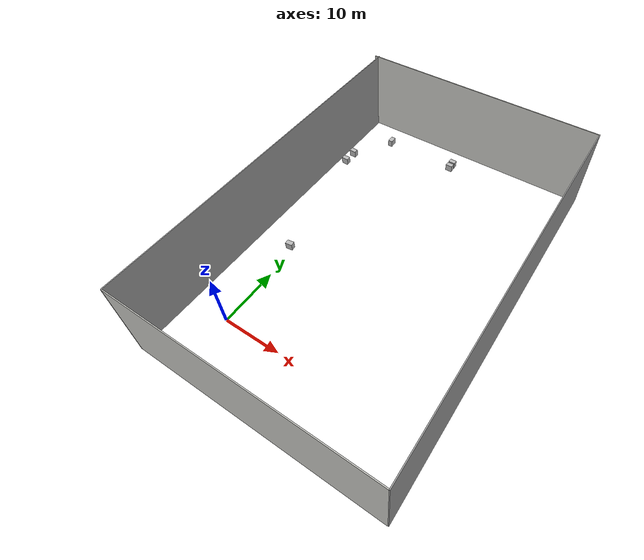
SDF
<sdf version="1.7">
 <world name="default">
  <gravity>0 0 -9.8</gravity>
  <physics name="default_physics" default="0" type="ode">
   <max_step_size>0.001</max_step_size>
   <real_time_factor>1</real_time_factor>
   <real_time_update_rate>1000</real_time_update_rate>
  </physics>
  <magnetic_field>6e-06 2.3e-05 -4.2e-05</magnetic_field>
  <atmosphere type="adiabatic"/>
  <scene><ambient>0.4 0.4 0.4 1</ambient><background>0.7 0.7 0.7 1</background><shadows>1</shadows></scene>
  <audio><device>default</device></audio>
  <spherical_coordinates>
   <surface_model>EARTH_WGS84</surface_model>
   <latitude_deg>0</latitude_deg>
   <longitude_deg>0</longitude_deg>
   <elevation>0</elevation>
   <heading_deg>0</heading_deg>
  </spherical_coordinates>
  <model name="wall">
   <pose>14.0007 21.0589 -0.288316 0 -0 0</pose>
   <link name="Wall_0">
    <collision name="Wall_0_Collision">
     <geometry><box><size>42.25 0.15 15</size></box></geometry>
     <pose>0 0 7.5 0 -0 0</pose>
    </collision>
    <visual name="Wall_0_Visual">
     <pose>0 0 7.5 0 -0 0</pose>
     <geometry><box><size>42.25 0.15 15</size></box></geometry>
     <material>
      <script><uri>file://media/materials/scripts/gazebo.material</uri><name>Gazebo/CeilingTiled</name></script>
      <ambient>0.760784 0.662745 0.627451 1</ambient>
     </material>
     <meta><layer>0</layer></meta>
    </visual>
    <pose>1e-06 -31.05 0 0 -0 3.14159</pose>
   </link>
   <link name="Wall_2">
    <collision name="Wall_2_Collision">
     <geometry><box><size>62.25 0.15 15</size></box></geometry>
     <pose>0 0 7.5 0 -0 0</pose>
    </collision>
    <visual name="Wall_2_Visual">
     <pose>0 0 7.5 0 -0 0</pose>
     <geometry><box><size>62.25 0.15 15</size></box></geometry>
     <material>
      <script><uri>file://media/materials/scripts/gazebo.material</uri><name>Gazebo/Grey</name></script>
      <ambient>1 1 1 1</ambient>
     </material>
     <meta><layer>0</layer></meta>
    </visual>
    <pose>-21.05 0 0 0 -0 1.5708</pose>
   </link>
   <static>1</static>
  </model>
  <model name="wall_0">
   <pose>13.8429 20.8537 -0.094598 0 0 -3.13197</pose>
   <link name="Wall_0">
    <collision name="Wall_0_Collision">
     <geometry><box><size>42.25 0.15 15</size></box></geometry>
     <pose>0 0 7.5 0 -0 0</pose>
    </collision>
    <visual name="Wall_0_Visual">
     <pose>0 0 7.5 0 -0 0</pose>
     <geometry><box><size>42.25 0.15 15</size></box></geometry>
     <material>
      <script><uri>file://media/materials/scripts/gazebo.material</uri><name>Gazebo/CeilingTiled</name></script>
      <ambient>0.760784 0.662745 0.627451 1</ambient>
     </material>
     <meta><layer>0</layer></meta>
    </visual>
    <pose>1e-06 -31.05 0 0 -0 3.14159</pose>
   </link>
   <link name="Wall_2">
    <collision name="Wall_2_Collision">
     <geometry><box><size>62.25 0.15 15</size></box></geometry>
     <pose>0 0 7.5 0 -0 0</pose>
    </collision>
    <visual name="Wall_2_Visual">
     <pose>0 0 7.5 0 -0 0</pose>
     <geometry><box><size>62.25 0.15 15</size></box></geometry>
     <material>
      <script><uri>file://media/materials/scripts/gazebo.material</uri><name>Gazebo/Grey</name></script>
      <ambient>1 1 1 1</ambient>
     </material>
     <meta><layer>0</layer></meta>
    </visual>
    <pose>-21.05 0 0 0 -0 1.5708</pose>
   </link>
   <static>1</static>
  </model>
  <model name="big_box3">
   <pose>-5.32747 38.0294 0.704984 -4e-06 -8e-06 -0.002309</pose>
   <static>0</static>
   <link name="link">
    <inertial>
     <mass>40</mass>
     <inertia><ixx>1</ixx><ixy>0</ixy><ixz>0</ixz><iyy>1</iyy><iyz>0</iyz><izz>1</izz></inertia>
    </inertial>
    <collision name="collision">
     <geometry><box><size>1.2 0.8 1.25</size></box></geometry>
     <surface><contact><ode><max_vel>0.1</max_vel><min_depth>0.001</min_depth></ode></contact></surface>
    </collision>
    <visual name="visual">
     <geometry><mesh><uri>model://big_box3/meshes/big_box.dae</uri></mesh></geometry>
    </visual>
   </link>
  </model>
  <model name="big_box3_0">
   <pose>-5.3225 40.5248 0.704962 2.6e-05 -2e-06 -0.016465</pose>
   <static>0</static>
   <link name="link">
    <inertial>
     <mass>40</mass>
     <inertia><ixx>1</ixx><ixy>0</ixy><ixz>0</ixz><iyy>1</iyy><iyz>0</iyz><izz>1</izz></inertia>
    </inertial>
    <collision name="collision">
     <geometry><box><size>1.2 0.8 1.25</size></box></geometry>
     <surface><contact><ode><max_vel>0.1</max_vel><min_depth>0.001</min_depth></ode></contact></surface>
    </collision>
    <visual name="visual">
     <geometry><mesh><uri>model://big_box3/meshes/big_box.dae</uri></mesh></geometry>
    </visual>
   </link>
  </model>
  <model name="big_box3_0_clone">
   <pose>12.0351 47.0001 0.704982 9e-06 -7e-06 -0.005232</pose>
   <static>0</static>
   <link name="link">
    <inertial>
     <mass>40</mass>
     <inertia><ixx>1</ixx><ixy>0</ixy><ixz>0</ixz><iyy>1</iyy><iyz>0</iyz><izz>1</izz></inertia>
    </inertial>
    <collision name="collision">
     <geometry><box><size>1.2 0.8 1.25</size></box></geometry>
     <surface><contact><ode><max_vel>0.1</max_vel><min_depth>0.001</min_depth></ode></contact></surface>
    </collision>
    <visual name="visual">
     <geometry><mesh><uri>model://big_box3/meshes/big_box.dae</uri></mesh></geometry>
    </visual>
   </link>
  </model>
  <model name="big_box3_0_clone_0">
   <pose>12.024 48.0686 0.704984 1e-06 1e-05 -0.018809</pose>
   <static>0</static>
   <link name="link">
    <inertial>
     <mass>40</mass>
     <inertia><ixx>1</ixx><ixy>0</ixy><ixz>0</ixz><iyy>1</iyy><iyz>0</iyz><izz>1</izz></inertia>
    </inertial>
    <collision name="collision">
     <geometry><box><size>1.2 0.8 1.25</size></box></geometry>
     <surface><contact><ode><max_vel>0.1</max_vel><min_depth>0.001</min_depth></ode></contact></surface>
    </collision>
    <visual name="visual">
     <geometry><mesh><uri>model://big_box3/meshes/big_box.dae</uri></mesh></geometry>
    </visual>
   </link>
  </model>
  <model name="big_box3_0_clone_1">
   <pose>-0.9165 47.2013 0.704976 5e-06 1e-05 1.59017</pose>
   <static>0</static>
   <link name="link">
    <inertial>
     <mass>40</mass>
     <inertia><ixx>1</ixx><ixy>0</ixy><ixz>0</ixz><iyy>1</iyy><iyz>0</iyz><izz>1</izz></inertia>
    </inertial>
    <collision name="collision">
     <geometry><box><size>1.2 0.8 1.25</size></box></geometry>
     <surface><contact><ode><max_vel>0.1</max_vel><min_depth>0.001</min_depth></ode></contact></surface>
    </collision>
    <visual name="visual">
     <geometry><mesh><uri>model://big_box3/meshes/big_box.dae</uri></mesh></geometry>
    </visual>
   </link>
  </model>
  <light name="user_directional_light_0" type="directional">
   <pose>12.4832 17.7772 1 0 -0 0</pose>
   <diffuse>0.5 0.5 0.5 1</diffuse>
   <specular>0.1 0.1 0.1 1</specular>
   <direction>0.1 0.1 -0.9</direction>
   <attenuation>
    <range>20</range>
    <constant>0.5</constant>
    <linear>0.01</linear>
    <quadratic>0.001</quadratic>
   </attenuation>
   <spot><inner_angle>0</inner_angle><outer_angle>0</outer_angle><falloff>0</falloff></spot>
  </light>
  <light name="user_directional_light_1" type="directional">
   <pose>0.752094 44.1181 1 0 -0 0</pose>
   <diffuse>0.5 0.5 0.5 1</diffuse>
   <specular>0.1 0.1 0.1 1</specular>
   <direction>0.1 0.1 -0.9</direction>
   <attenuation>
    <range>20</range>
    <constant>0.5</constant>
    <linear>0.01</linear>
    <quadratic>0.001</quadratic>
   </attenuation>
   <spot><inner_angle>0</inner_angle><outer_angle>0</outer_angle><falloff>0</falloff></spot>
  </light>
  <light name="user_directional_light_2" type="directional">
   <pose>2.74973 8.43187 1 0 -0 0</pose>
   <diffuse>0.5 0.5 0.5 1</diffuse>
   <specular>0.1 0.1 0.1 1</specular>
   <direction>0.1 0.1 -0.9</direction>
   <attenuation>
    <range>20</range>
    <constant>0.5</constant>
    <linear>0.01</linear>
    <quadratic>0.001</quadratic>
   </attenuation>
   <spot><inner_angle>0</inner_angle><outer_angle>0</outer_angle><falloff>0</falloff></spot>
  </light>
  <light name="user_directional_light_3" type="directional">
   <pose>21.507 10.72 1 0 -0 0</pose>
   <diffuse>0.5 0.5 0.5 1</diffuse>
   <specular>0.1 0.1 0.1 1</specular>
   <direction>0.1 0.1 -0.9</direction>
   <attenuation>
    <range>20</range>
    <constant>0.5</constant>
    <linear>0.01</linear>
    <quadratic>0.001</quadratic>
   </attenuation>
   <spot><inner_angle>0</inner_angle><outer_angle>0</outer_angle><falloff>0</falloff></spot>
  </light>
  <light name="user_directional_light_4" type="directional">
   <pose>21.8425 42.1609 1 0 -0 0</pose>
   <diffuse>0.5 0.5 0.5 1</diffuse>
   <specular>0.1 0.1 0.1 1</specular>
   <direction>0.1 0.1 -0.9</direction>
   <attenuation>
    <range>20</range>
    <constant>0.5</constant>
    <linear>0.01</linear>
    <quadratic>0.001</quadratic>
   </attenuation>
   <spot><inner_angle>0</inner_angle><outer_angle>0</outer_angle><falloff>0</falloff></spot>
  </light>
  <light name="user_directional_light_5" type="directional">
   <pose>-1.34759 41.1381 1 0 -0 0</pose>
   <diffuse>0.5 0.5 0.5 1</diffuse>
   <specular>0.1 0.1 0.1 1</specular>
   <direction>0.1 0.1 -0.9</direction>
   <attenuation>
    <range>20</range>
    <constant>0.5</constant>
    <linear>0.01</linear>
    <quadratic>0.001</quadratic>
   </attenuation>
   <spot><inner_angle>0</inner_angle><outer_angle>0</outer_angle><falloff>0</falloff></spot>
  </light>
  <model name="big_box3_clone">
   <pose>-0.902292 16.0459 0.704981 1e-06 -5e-06 0.130066</pose>
   <static>0</static>
   <link name="link">
    <inertial>
     <mass>40</mass>
     <inertia><ixx>1</ixx><ixy>0</ixy><ixz>0</ixz><iyy>1</iyy><iyz>0</iyz><izz>1</izz></inertia>
    </inertial>
    <collision name="collision">
     <geometry><box><size>1.2 0.8 1.25</size></box></geometry>
     <surface><contact><ode><max_vel>0.1</max_vel><min_depth>0.001</min_depth></ode></contact></surface>
    </collision>
    <visual name="visual">
     <geometry><mesh><uri>model://big_box3/meshes/big_box.dae</uri></mesh></geometry>
    </visual>
   </link>
  </model>
 </world>
</sdf>
